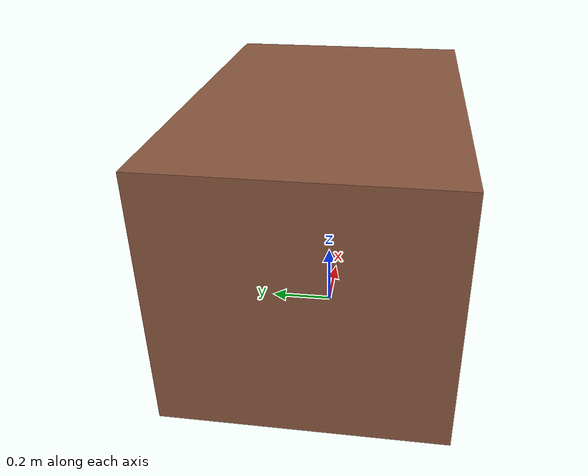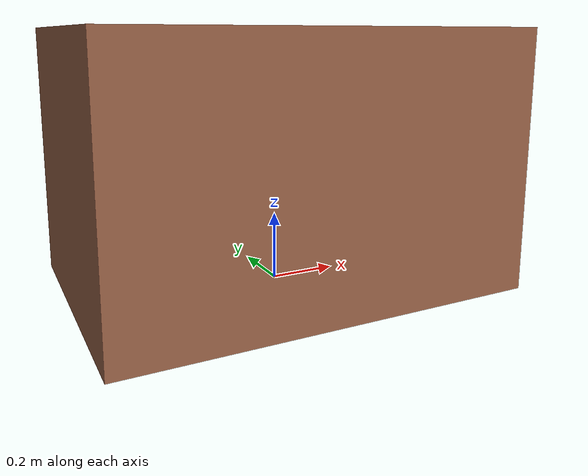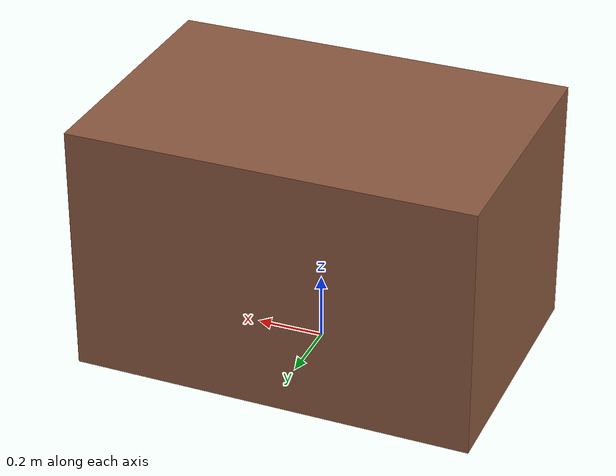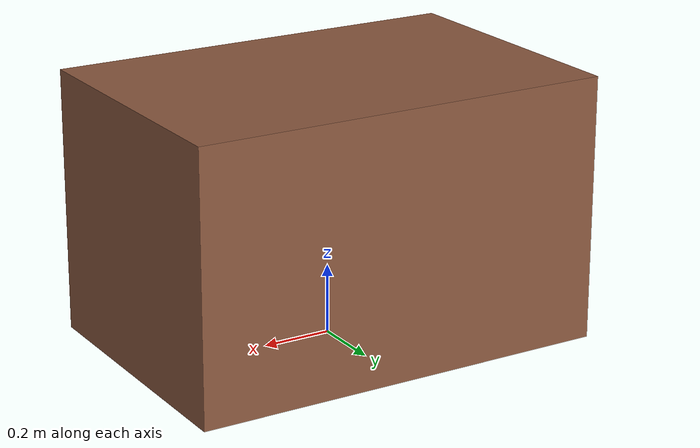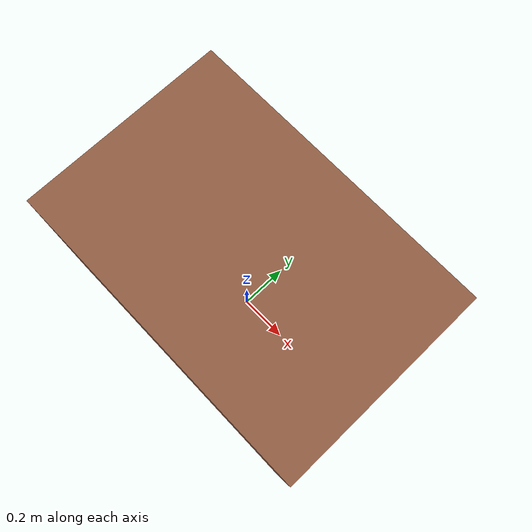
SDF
<?xml version="1.0" ?>
<sdf version="1.6">
  <model name="work_table">
    <static>true</static>
    <link name="table_link">
      <!-- Center of a 0.75m tall table -->
      <pose>0 0 0.375 0 0 0</pose>
      <collision name="table_collision">
        <geometry>
          <box>
            <size>1.2 0.8 0.75</size>
          </box>
        </geometry>
        <surface>
          <friction>
            <ode>
              <mu>2.0</mu>
              <mu2>2.0</mu2>
            </ode>
          </friction>
          <bounce>
            <restitution_coefficient>0.0</restitution_coefficient>
            <threshold>1000000</threshold>
          </bounce>
          <contact>
            <ode>
              <kp>1000000</kp>
              <kd>1000</kd>
              <max_vel>0.05</max_vel>
              <min_depth>0.001</min_depth>
            </ode>
          </contact>
        </surface>
      </collision>
      <visual name="table_visual">
        <geometry>
          <box>
            <size>1.2 0.8 0.75</size>
          </box>
        </geometry>
        <material>
          <ambient>0.45 0.3 0.2 1.0</ambient>
          <diffuse>0.55 0.35 0.25 1.0</diffuse>
        </material>
      </visual>
    </link>
  </model>
</sdf>
